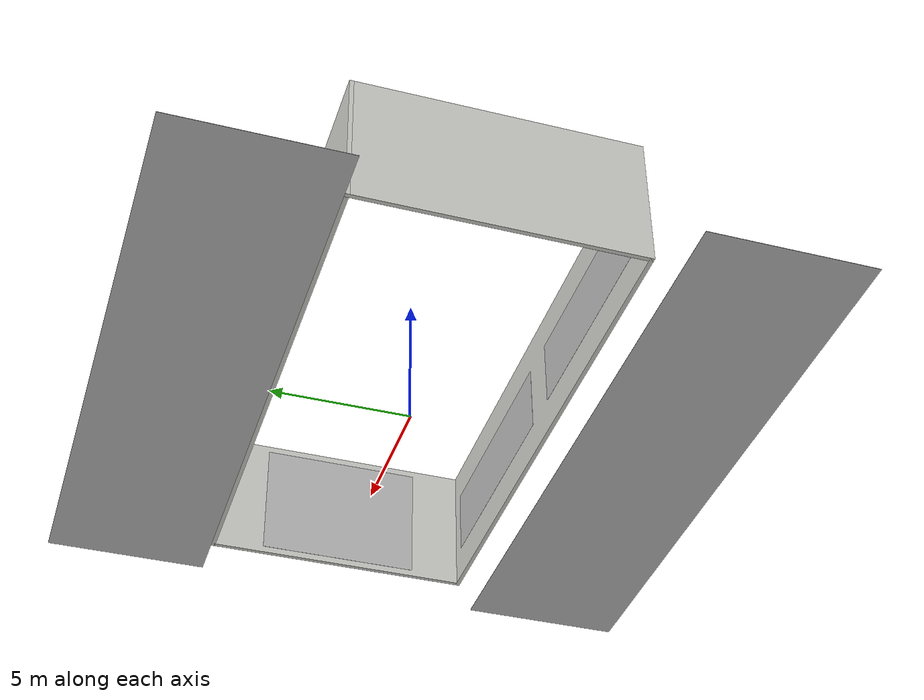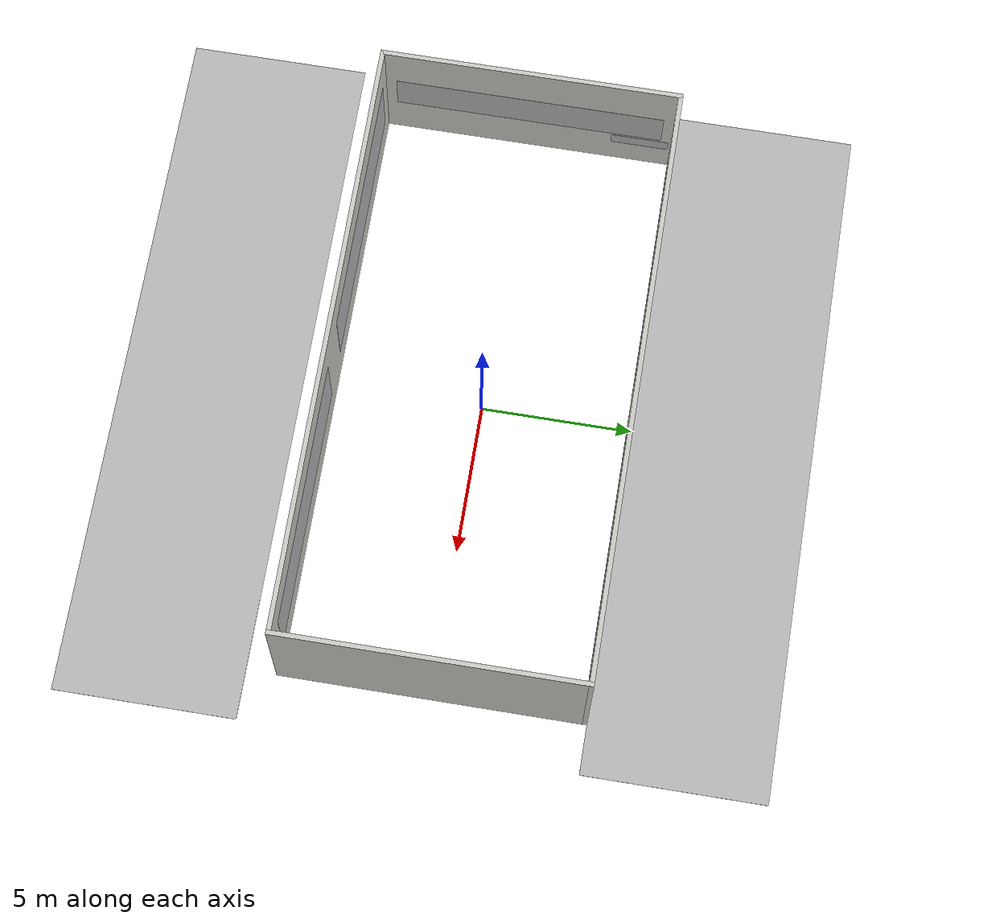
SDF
<?xml version='1.0'?>
<sdf version='1.6'>
  <model name='future_aircraft'>
    <pose frame=''>0 0 0 0 -0 0</pose>
    <link name='Floor_2'>
      <collision name='Floor_2_Collision'>
        <geometry>
          <box>
            <size>20 10 0.1</size>
          </box>
        </geometry>
        <pose frame=''>0 0 0.05 0 -0 0</pose>
      </collision>
      <pose frame=''>0 0 5 0 -0 0</pose>
    </link>

    <link name='Wall_2'>
      <collision name='Wall_2_Collision'>
        <geometry>
          <box>
            <size>10 0.15 5</size>
          </box>
        </geometry>
        <pose frame=''>0 0 2.5 0 -0 0</pose>
      </collision>
      <visual name='Wall_2_Visual'>
        <pose frame=''>0 0 2.5 0 -0 0</pose>
        <geometry>
          <box>
            <size>10 0.15 5</size>
          </box>
        </geometry>
        <material>
          <script>
            <uri>file://media/materials/scripts/gazebo.material</uri>
            <name>Gazebo/CeilingTiled</name>
          </script>
          <ambient>1 1 1 1</ambient>
        </material>
        <meta>
          <layer>0</layer>
        </meta>
      </visual>
      <pose frame=''>-9.925 0 0 0 -0 -1.5708</pose>
    </link>
    <link name='Wall_3'>
      <collision name='Wall_3_Collision'>
        <geometry>
          <box>
            <size>20 0.15 5</size>
          </box>
        </geometry>
        <pose frame=''>0 0 2.5 0 -0 0</pose>
      </collision>
      <visual name='Wall_3_Visual'>
        <pose frame=''>0 0 2.5 0 -0 0</pose>
        <geometry>
          <box>
            <size>20 0.15 5</size>
          </box>
        </geometry>
        <material>
          <script>
            <uri>file://media/materials/scripts/gazebo.material</uri>
            <name>Gazebo/CeilingTiled</name>
          </script>
          <ambient>1 1 1 1</ambient>
        </material>
        <meta>
          <layer>0</layer>
        </meta>
      </visual>
      <pose frame=''>0 -4.925 0 0 -0 0</pose>
    </link>
    <link name='Wall_4'>
      <collision name='Wall_4_Collision'>
        <geometry>
          <box>
            <size>10 0.15 5</size>
          </box>
        </geometry>
        <pose frame=''>0 0 2.5 0 -0 0</pose>
      </collision>
      <visual name='Wall_4_Visual'>
        <pose frame=''>0 0 2.5 0 -0 0</pose>
        <geometry>
          <box>
            <size>10 0.15 5</size>
          </box>
        </geometry>
        <material>
          <script>
            <uri>file://media/materials/scripts/gazebo.material</uri>
            <name>Gazebo/CeilingTiled</name>
          </script>
          <ambient>1 1 1 1</ambient>
        </material>
        <meta>
          <layer>0</layer>
        </meta>
      </visual>
      <pose frame=''>9.925 0 0 0 -0 1.5708</pose>
    </link>
    <link name='Wall_5'>
      <collision name='Wall_5_Collision'>
        <geometry>
          <box>
            <size>20 0.15 5</size>
          </box>
        </geometry>
        <pose frame=''>0 0 2.5 0 -0 0</pose>
      </collision>
      <visual name='Wall_5_Visual'>
        <pose frame=''>0 0 2.5 0 -0 0</pose>
        <geometry>
          <box>
            <size>20 0.15 5</size>
          </box>
        </geometry>
        <material>
          <script>
            <uri>file://media/materials/scripts/gazebo.material</uri>
            <name>Gazebo/CeilingTiled</name>
          </script>
          <ambient>1 1 1 1</ambient>
        </material>
        <meta>
          <layer>0</layer>
        </meta>
      </visual>
      <pose frame=''>0 4.925 0 0 -0 3.14159</pose>
    </link>

    <link name="amov_logo_prometheus">
      <visual name="visual_osrf">
        <pose>-9.850000 0 2.5 0 0 0</pose>
        <geometry>
          <box>
            <size>0.01 9 1.5</size>
          </box>
        </geometry>
        <material>
          <script>
            <uri>model://future_aircraft_wall/materials/scripts</uri>
            <uri>model://future_aircraft_wall/materials/textures</uri>
            <name>amov/prometheus</name>
          </script>
        </material>
      </visual>
    </link>

    <link name="company_name">
      <visual name="visual_osrf">
        <pose>-9.850000 3.8 1.4 0 0 0</pose>
        <geometry>
          <box>
            <size>0.01 1.9375 0.5</size>
          </box>
        </geometry>
        <material>
          <script>
            <uri>model://future_aircraft_wall/materials/scripts</uri>
            <uri>model://future_aircraft_wall/materials/textures</uri>
            <name>amov/company_name</name>
          </script>
        </material>
      </visual>
    </link>

    <link name="amov_logo">
      <visual name="visual_osrf">
        <pose>9.850000 0 2.5 0 0 0</pose>
        <geometry>
          <box>
            <size>0.01 6 4.5</size>
          </box>
        </geometry>
        <material>
          <script>
            <uri>model://future_aircraft_wall/materials/scripts</uri>
            <uri>model://future_aircraft_wall/materials/textures</uri>
            <name>amov/logo</name>
          </script>
        </material>
      </visual>
    </link>

    <link name="amov_amov_1">
      <visual name="visual_osrf">
        <pose>5 4.85 2.5 0 0 1.5707</pose>
        <geometry>
          <box>
            <size>0.01 8.5 2.5</size>
          </box>
        </geometry>
        <material>
          <script>
            <uri>model://future_aircraft_wall/materials/scripts</uri>
            <uri>model://future_aircraft_wall/materials/textures</uri>
            <name>amov/uni</name>
          </script>
        </material>
      </visual>
    </link>

    <link name="amov_amov_2">
      <visual name="visual_osrf">
        <pose>-5 4.85 2.5 0 0 1.5707</pose>
        <geometry>
          <box>
            <size>0.01 8.5 2.5</size>
          </box>
        </geometry>
        <material>
          <script>
            <uri>model://future_aircraft_wall/materials/scripts</uri>
            <uri>model://future_aircraft_wall/materials/textures</uri>
            <name>amov/amov</name>
          </script>
        </material>
      </visual>
    </link>

    <link name="amov_amov_3">
      <visual name="visual_osrf">
        <pose>5 -4.85 2.5 0 0 -1.5707</pose>
        <geometry>
          <box>
            <size>0.01 8.5 2.5</size>
          </box>
        </geometry>
        <material>
          <script>
            <uri>model://future_aircraft_wall/materials/scripts</uri>
            <uri>model://future_aircraft_wall/materials/textures</uri>
            <name>amov/amov</name>
          </script>
        </material>
      </visual>
    </link>

    <link name="amov_amov_4">
      <visual name="visual_osrf">
        <pose>-5 -4.85 2.5 0 0 -1.5707</pose>
        <geometry>
          <box>
            <size>0.01 8.5 2.5</size>
          </box>
        </geometry>
        <material>
          <script>
            <uri>model://future_aircraft_wall/materials/scripts</uri>
            <uri>model://future_aircraft_wall/materials/textures</uri>
            <name>amov/uni</name>
          </script>
        </material>
      </visual>
    </link>

    <link name="competition_name">
      <visual name="visual_osrf">
        <pose>0 -9 0 0 -1.5707963267948966 1.5707963267948966</pose>
        <geometry>
          <box>
            <size>0.01 23.25 6</size>
          </box>
        </geometry>
        <material>
          <script>
            <uri>model://future_aircraft_wall/materials/scripts</uri>
            <uri>model://future_aircraft_wall/materials/textures</uri>
            <name>amov/competition_name</name>
          </script>
        </material>
      </visual>
    </link>

    <link name="slogan">
      <visual name="visual_osrf">
        <pose>0 8 0 0 -1.5707963267948966 1.5707963267948966 </pose>
        <geometry>
          <box>
            <size>0.01 23.25 6</size>
          </box>
        </geometry>
        <material>
          <script>
            <uri>model://future_aircraft_wall/materials/scripts</uri>
            <uri>model://future_aircraft_wall/materials/textures</uri>
            <name>amov/slogan</name>
          </script>
        </material>
      </visual>
    </link>

    <static>1</static>
  </model>
</sdf>
